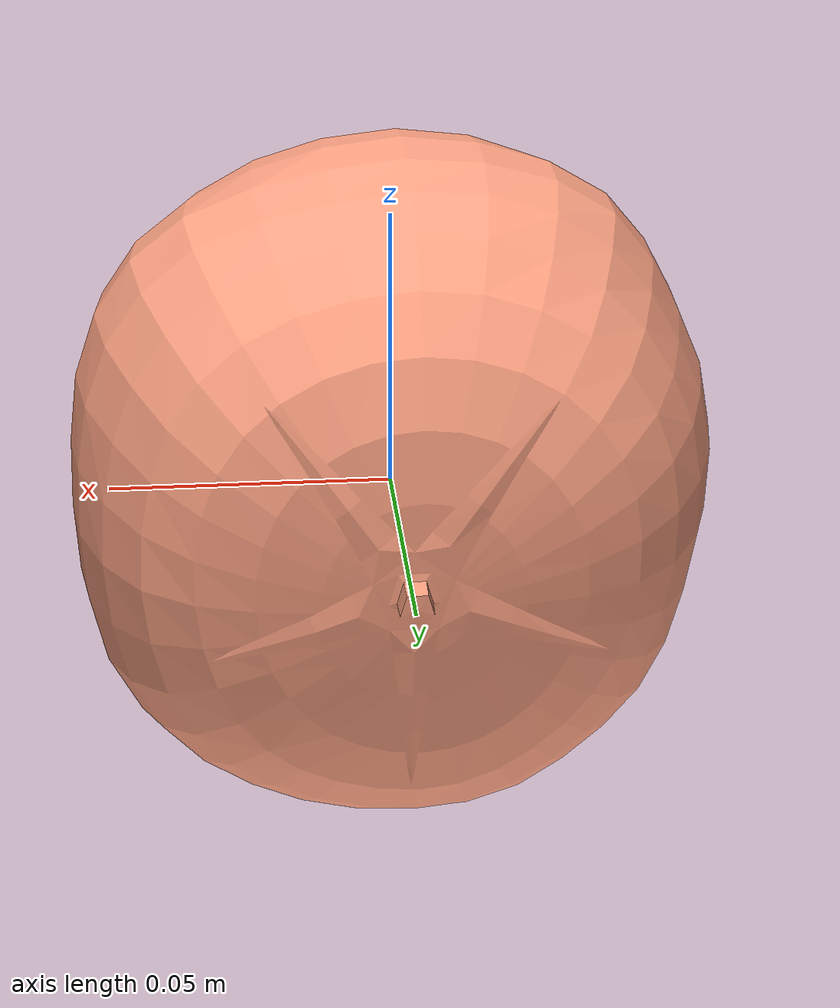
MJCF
<mujoco model="Tomato_19">
  <default>
    <default class="visual">
      <geom group="2" type="mesh" contype="0" conaffinity="0"/>
    </default>
    <default class="collision">
      <geom group="3" type="mesh"/>
    </default>
  </default>
  <asset>
    <material name="Tomato2_Mat3" specular="0.5" shininess="0.5" rgba="1 0.6397059 0.516 1.0"/>
    <mesh file="Tomato_19.obj"/>
    <mesh file="Tomato_19_collision_0.obj"/>
    <mesh file="Tomato_19_collision_1.obj"/>
    <mesh file="Tomato_19_collision_2.obj"/>
    <mesh file="Tomato_19_collision_3.obj"/>
    <mesh file="Tomato_19_collision_4.obj"/>
    <mesh file="Tomato_19_collision_5.obj"/>
    <mesh file="Tomato_19_collision_6.obj"/>
    <mesh file="Tomato_19_collision_7.obj"/>
  </asset>
  <worldbody>
    <body name="Tomato_19">
      <geom material="Tomato2_Mat3" mesh="Tomato_19" class="visual"/>
      <geom mesh="Tomato_19_collision_0" rgba="0.31099793727946057 0.9986986624186909 0.5867906937459223 1" class="collision"/>
      <geom mesh="Tomato_19_collision_1" rgba="0.6869995272803647 0.23479057234913925 0.41357876808092353 1" class="collision"/>
      <geom mesh="Tomato_19_collision_2" rgba="0.4803034650874426 0.8147768654326402 0.15710695330245306 1" class="collision"/>
      <geom mesh="Tomato_19_collision_3" rgba="0.7101586930537693 0.6866192959216703 0.729324407065147 1" class="collision"/>
      <geom mesh="Tomato_19_collision_4" rgba="0.34397954019750154 0.4669269912292462 0.42895785150662713 1" class="collision"/>
      <geom mesh="Tomato_19_collision_5" rgba="0.7652620964385229 0.16950746847331355 0.010285188939370471 1" class="collision"/>
      <geom mesh="Tomato_19_collision_6" rgba="0.3673599424899351 0.03776068909910213 0.4135994745849694 1" class="collision"/>
      <geom mesh="Tomato_19_collision_7" rgba="0.3823813966694445 0.8529394769053783 0.054653089287542755 1" class="collision"/>
    </body>
  </worldbody>
</mujoco>
